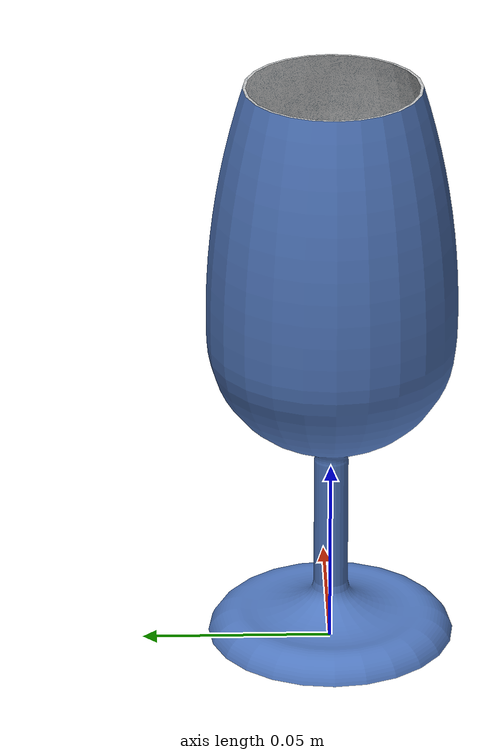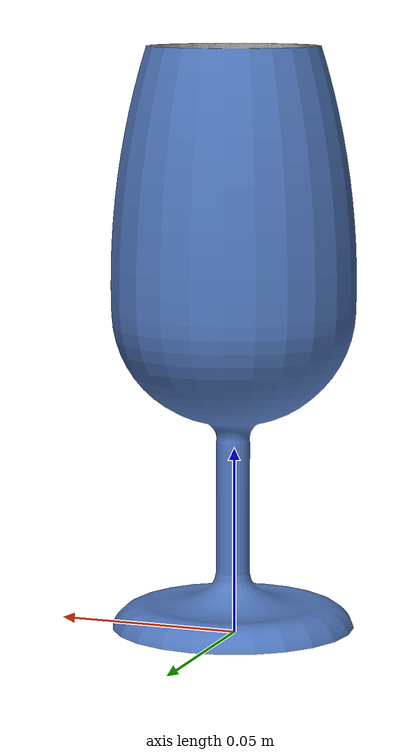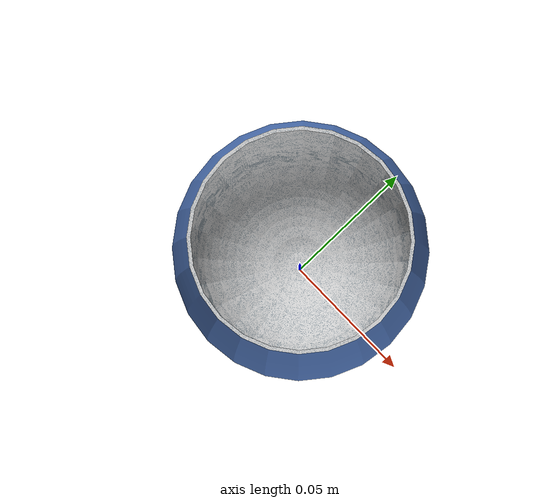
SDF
<?xml version="1.0" ?>
<sdf version="1.4">
  <model name="wine_glass">
    <link name="link">

      <inertial>
        <pose>0 0 0.0 0 0 0</pose>
        <mass>0.3</mass>
        <inertia>
          <ixx>0.00469225</ixx>
          <ixy>0.00469225</ixy><iyy>0.0</iyy>
          <ixz>0.00626477</ixz><iyz>0.0</iyz><izz>0.0</izz>
        </inertia>
      </inertial>

      <visual name="visual">
        <cast_shadows>false</cast_shadows>
        <geometry>
          <mesh>
            <uri>model://custom_wine_glass/meshes/model.dae</uri>
          </mesh>
        </geometry>
      </visual>

      <collision name="collision">
        <geometry>
          <mesh>
            <uri>model://custom_wine_glass/meshes/model.dae</uri>
          </mesh>
        </geometry>
      </collision>

    </link>
  </model>
</sdf>
